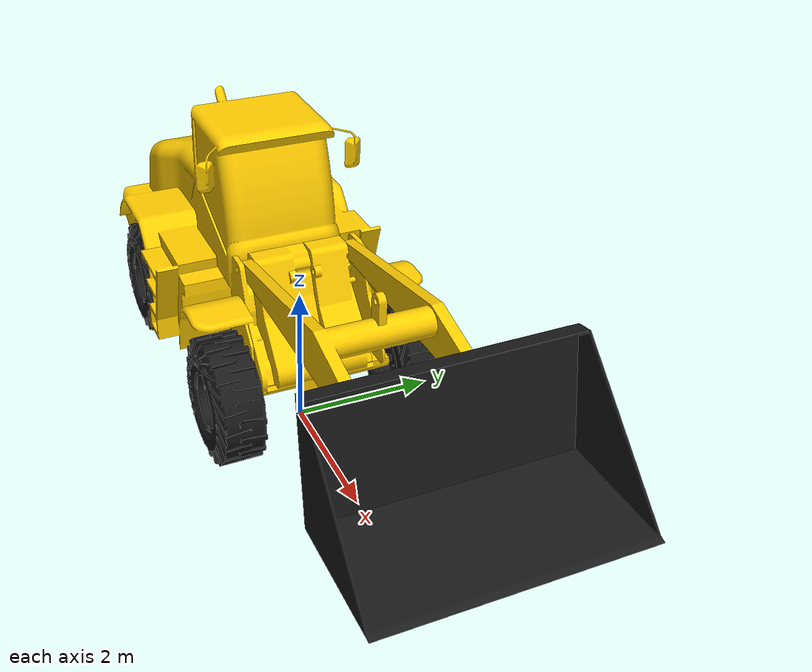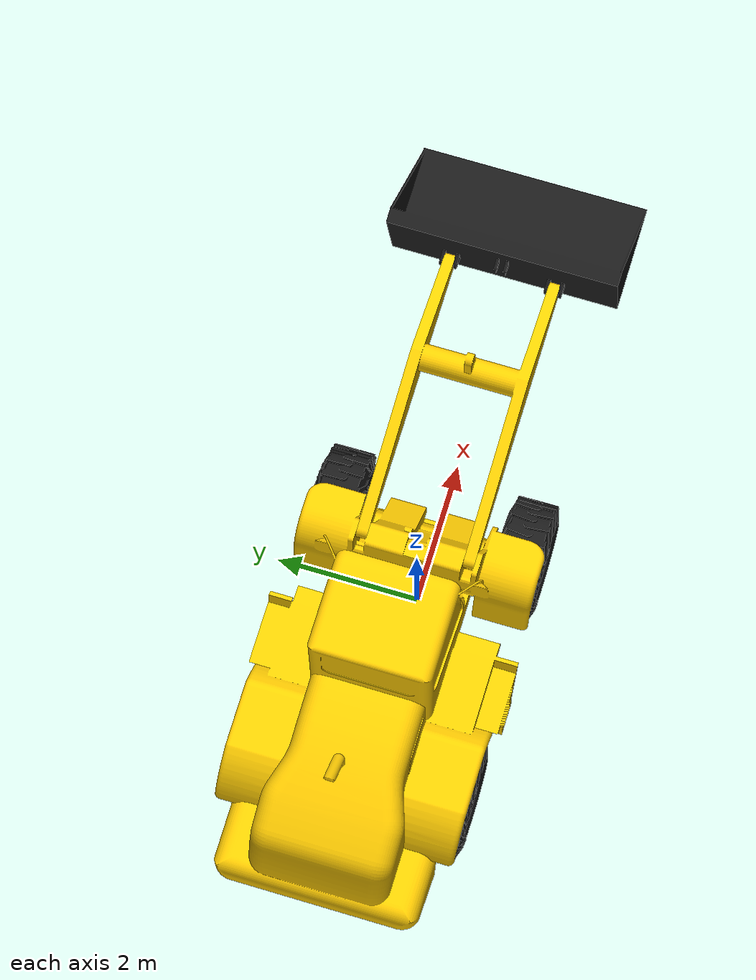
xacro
<?xml version="1.0"?>
<robot xmlns:xacro="http://www.ros.org/wiki/xacro" name="L580">

  <material name="yellow"><color rgba="1.0 0.8 0.0 1.0"/></material>
  <material name="grey"><color rgba="0.5 0.5 0.5 1.0"/></material>
  <material name="black"><color rgba="0.1 0.1 0.1 1.0"/></material>

  <link name="dummy_link"/>

  <joint name="dummy_to_base" type="fixed">
    <parent link="dummy_link"/>
    <child link="base_link"/>
    <origin xyz="0 0 2.6" rpy="0 0 0"/>
  </joint>

  <link name="base_link">
    <inertial>
      <mass value="5000.0"/>
      <origin xyz="-2.35168  0.0 -0.48814" rpy="0 0 0"/>
      <inertia ixx="5000.0" ixy="0.0" ixz="500.0" iyy="15000.0" iyz="0.0" izz="13000.0"/>
    </inertial>
    <visual>
      <origin xyz="0 0 0" rpy="0 0 0"/>
      <geometry><mesh filename="file:///$(find loader_sim_pkg)/meshes/new/body_002.STL"/></geometry>
      <material name="yellow"/>
    </visual>
    <collision>
      <origin xyz="0 0 0" rpy="0 0 0"/>
      <geometry><mesh filename="file:///$(find loader_sim_pkg)/meshes/new/body_002.STL"/></geometry>
    </collision>
  </link>

  <joint name="front_wheel_joint" type="continuous">
    <parent link="base_link"/>
    <child link="front_wheel_link"/>
    <origin xyz="0.62648 0 -1.49698" rpy="-1.57 -1.57 0"/>
    <axis xyz="0 0 1"/>
  </joint>
  <link name="front_wheel_link">
    <inertial>
      <mass value="500.0"/>
      <origin xyz="0 0 0" rpy="0 0 0"/>
      <inertia ixx="100.0" ixy="0.0" ixz="0.0" iyy="100.0" iyz="0.0" izz="50.0"/>
    </inertial>
    <visual><geometry><mesh filename="file:///$(find loader_sim_pkg)/meshes/new/wheel_002.STL"/></geometry><material name="black"/></visual>
    <collision><geometry><mesh filename="file:///$(find loader_sim_pkg)/meshes/new/wheel_002.STL"/></geometry></collision>
  </link>

  <joint name="rear_wheel_joint" type="continuous">
    <parent link="base_link"/>
    <child link="rear_wheel_link"/>
    <origin xyz="-2.77017 0 -1.49698" rpy="-1.57 -1.57 0"/>
    <axis xyz="0 0 1"/>
  </joint>
  <link name="rear_wheel_link">
    <inertial>
      <mass value="500.0"/>
      <origin xyz="0 0 0" rpy="0 0 0"/>
      <inertia ixx="100.0" ixy="0.0" ixz="0.0" iyy="100.0" iyz="0.0" izz="50.0"/>
    </inertial>
    <visual><geometry><mesh filename="file:///$(find loader_sim_pkg)/meshes/new/wheel_002.STL"/></geometry><material name="black"/></visual>
    <collision><geometry><mesh filename="file:///$(find loader_sim_pkg)/meshes/new/wheel_002.STL"/></geometry></collision>
  </link>

  <joint name="arm_joint2" type="revolute">
    <parent link="base_link"/>
    <child link="arm_link1"/>
    <origin xyz="0 0 0" rpy="-1.57 0 0"/> <!-- rpy="-1.57 0.40815617 0" -->
    <axis xyz="0 0 1"/>
    <limit lower="-1.5" upper="1.5" effort="50000" velocity="0.5"/>
    <dynamics damping="500.0" friction="50.0"/>
  </joint>
  <link name="arm_link1">
    <inertial>
      <mass value="100.0"/>
      <origin xyz="1.28313 0.0 0.0" rpy="0 0 0"/>
      <inertia ixx="10.0" ixy="0.0" ixz="0" iyy="25.0" iyz="0.0" izz="28.0"/>
    </inertial>
    <visual><geometry><mesh filename="file:///$(find loader_sim_pkg)/meshes/new/arm_link1_002.STL"/></geometry><material name="yellow"/></visual>
    <collision><geometry><mesh filename="file:///$(find loader_sim_pkg)/meshes/new/arm_link1_002.STL"/></geometry></collision>
  </link>

  <joint name="arm_joint4" type="revolute">
    <parent link="arm_link1"/>
    <child link="bucket"/>
    <origin xyz="3.93583 0 0" rpy="0 0 0"/> <!-- rpy="0 0 -0.329692696" -->
    <axis xyz="0 0 1"/>
    <limit lower="-2.0" upper="2.0" effort="30000" velocity="0.5"/>
    <dynamics damping="200.0" friction="20.0"/>
  </joint>
  <link name="bucket">
    <inertial>
      <mass value="10.0"/>
      <origin xyz="0.81076 -0.35 0.0" rpy="0 0 0"/>
      <inertia ixx="5.0" ixy="0.0" ixz="0.0" iyy="5.0" iyz="0.0" izz="2.0"/>
    </inertial>
    <visual><geometry><mesh filename="file:///$(find loader_sim_pkg)/meshes/new/Bucket_002.STL"/></geometry><material name="black"/></visual>
    <collision><geometry><mesh filename="file:///$(find loader_sim_pkg)/meshes/new/Bucket_002.STL"/></geometry></collision>
  </link>

  <ros2_control name="GazeboSystem" type="system">
    <hardware>
        <plugin>gazebo_ros2_control/GazeboSystem</plugin>
    </hardware>

    <joint name="front_wheel_joint">
        <command_interface name="velocity"/>
        <state_interface name="position">
            <param name="initial_value">0.0</param>
        </state_interface>
        <state_interface name="velocity"/>
    </joint>
    <joint name="rear_wheel_joint">
        <command_interface name="velocity"/>
        <state_interface name="position">
            <param name="initial_value">0.0</param>
        </state_interface>
        <state_interface name="velocity"/>
    </joint>

    <joint name="arm_joint2">
        <command_interface name="velocity"/>
        <command_interface name="position">
            <param name="min">-3.14</param>
            <param name="max">3.14</param>
        </command_interface>
        <state_interface name="position">
            <param name="initial_value">0.0</param>
        </state_interface>
        <state_interface name="velocity"/>
        <state_interface name="effort"/>
    </joint>
    <joint name="arm_joint4">
        <command_interface name="velocity"/>
        <command_interface name="position">
            <param name="min">-3.14</param>
            <param name="max">3.14</param>
        </command_interface>
        <state_interface name="position">
            <param name="initial_value">0.0</param>
        </state_interface>
        <state_interface name="velocity"/>
        <state_interface name="effort"/>
    </joint>
  </ros2_control>

  <gazebo>
    <plugin filename="libgazebo_ros2_control.so" name="gazebo_ros2_control">
        <parameters>$(find loader_sim_pkg)/config/controllers.yaml</parameters>
    </plugin>
  </gazebo>

  <gazebo reference="front_wheel_link">
      <surface>
        <friction>
          <ode>
            <slip1>0.0</slip1>
            <slip2>0.0</slip2>
            <mu>10.0</mu>
            <mu2>10.0</mu2>
          </ode>
        </friction>
      </surface>
      <material>Gazebo/Grey</material>
  </gazebo>

  <gazebo reference="rear_wheel_link">
      <surface>
        <friction>
          <ode>
            <slip1>0.0</slip1>
            <slip2>0.0</slip2>
            <mu>10.0</mu>
            <mu2>10.0</mu2>
          </ode>
        </friction>
      </surface>
      <material>Gazebo/Grey</material>
  </gazebo>

</robot>
